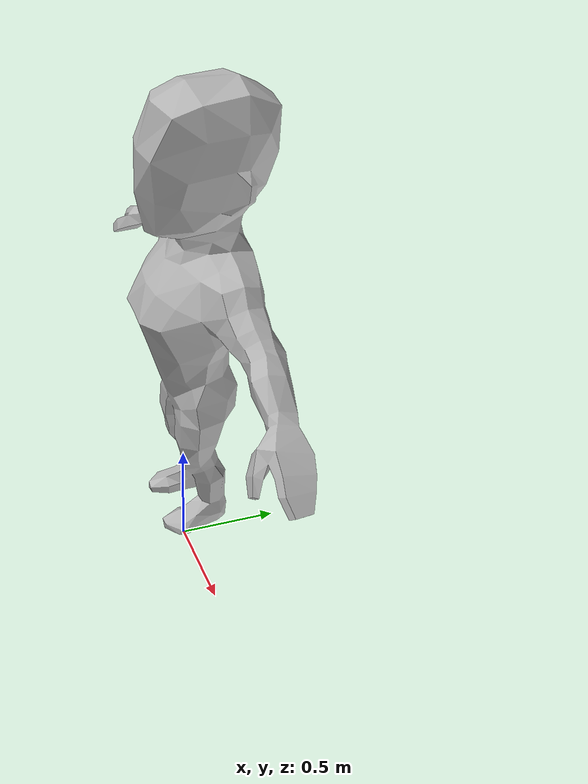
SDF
<?xml version="1.0" ?>
<sdf version="1.4">
  <model name="thief">
    <static>true</static>
    <pose>0 0 0.2 0 0.15 0</pose>
    <link name="link">
      <collision name="collision">
        <geometry>
          <mesh>
            <uri>model://thief/model.dae</uri>
            <scale>0.015 0.015 0.015</scale>
          </mesh>
        </geometry>
      </collision>
      <visual name="visual">
        <geometry>
          <mesh>
            <uri>model://thief/model.dae</uri>
            <scale>0.015 0.015 0.015</scale>
          </mesh>
        </geometry>
      </visual>
    </link>
  </model>
</sdf>
